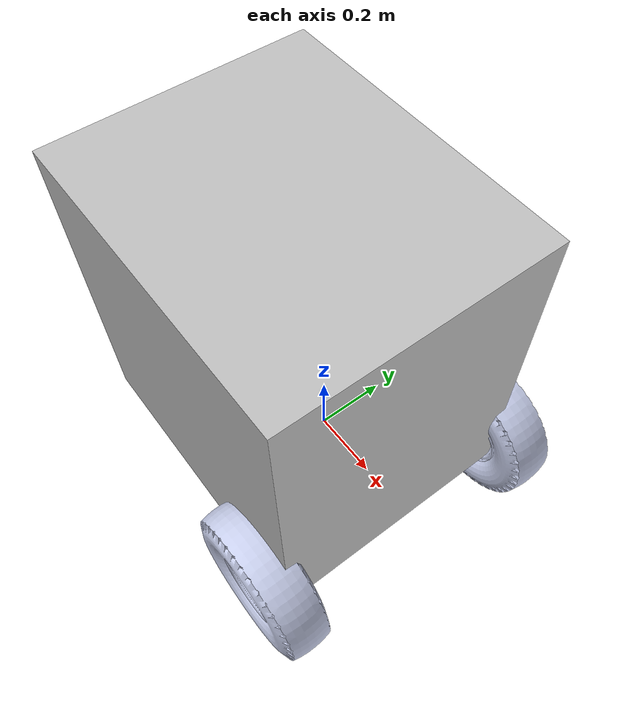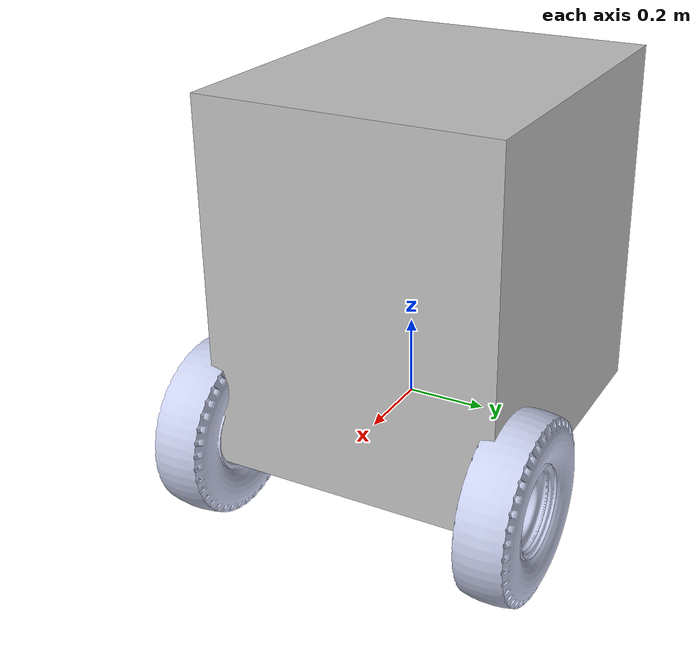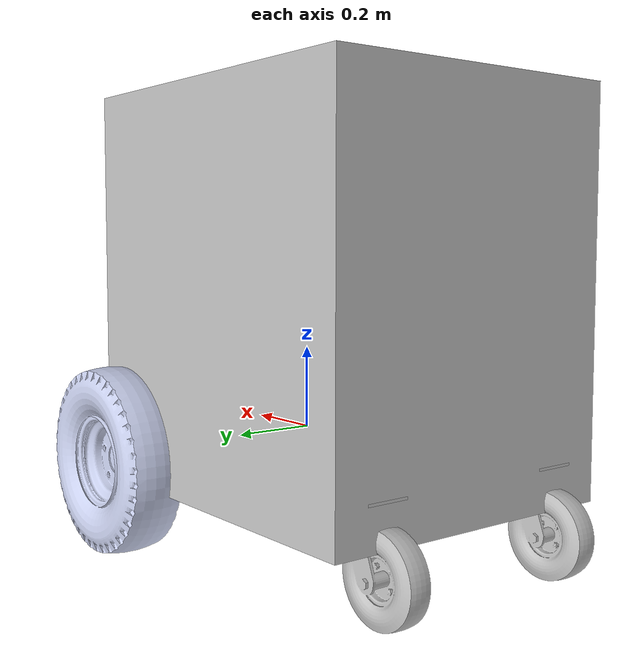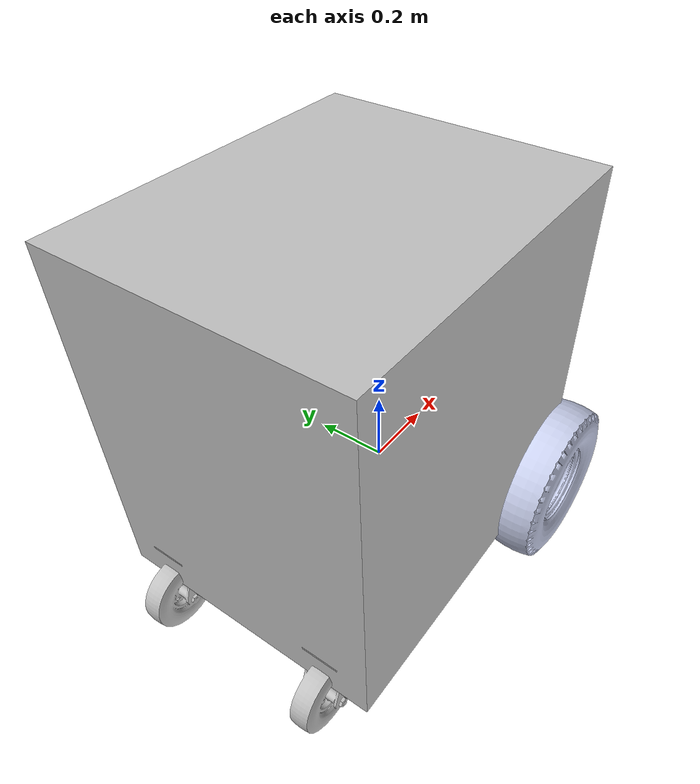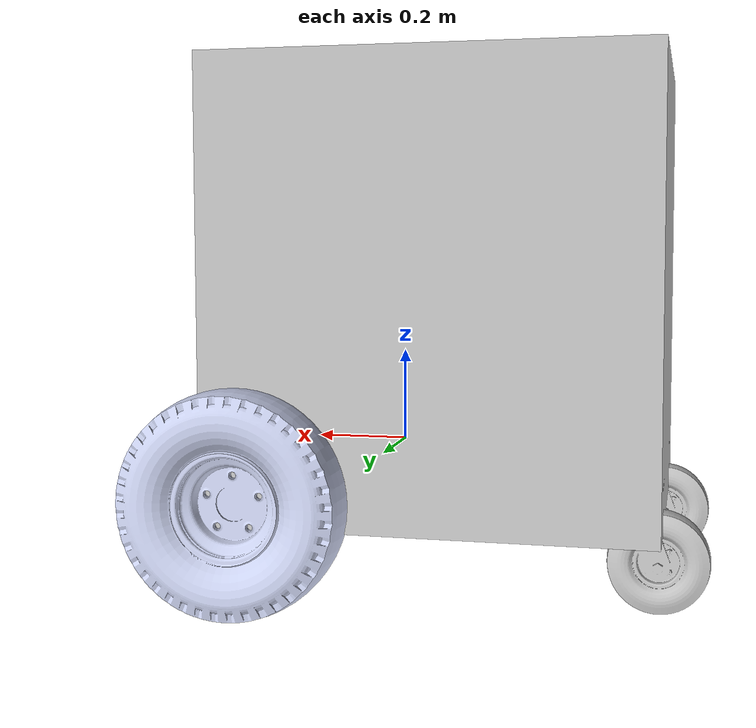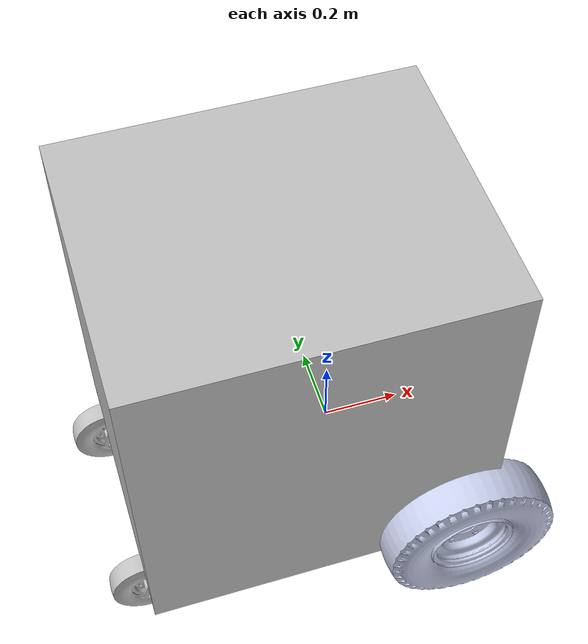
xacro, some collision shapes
<?xml version='1.0' encoding='utf-8'?>
<robot name="r3_a" xmlns:xacro="http://www.ros.org/wiki/xacro">
  <!--Canonical normalized export. Collision boxes are provisional outer bounds, not validated wheel/contact geometry. No sensor mounts or base_footprint added.-->
  <link name="base_link">
    <inertial>
      <origin xyz="0.037416177594850997 -0.0012743090117183201 0.047060864214616999" rpy="0 0 0" />
      <mass value="81.1401446778104" />
      <inertia ixx="0.728632085236677" ixy="1.32350753774596E-05" ixz="-0.022485961790775701" iyy="1.14289496966306" iyz="-7.48148338659214e-05" izz="1.53133782528754" />
    </inertial>
    <visual>
      <origin xyz="-0 -0 0" rpy="0 0 3.1415926535897931" />
      <geometry>
        <mesh filename="package://igvc_description/meshes/camera_mount/base_static_source_basis.stl" />
      </geometry>
      <material name="">
        <color rgba="0.752941176470588 0.752941176470588 0.752941176470588 1" />
      </material>
    </visual>
    <collision name="provisional_bounds_0">
      <origin xyz="-0.12021836638450623 -0 0.34425326436758041" rpy="0 0 0" />
      <geometry>
        <box size="0.91920000314712524 0.7556459903717041 0.95149345695972443" />
      </geometry>
    </collision>
  </link>
  <link name="wheel_left">
    <inertial>
      <origin xyz="1.7979609136242699e-05 -0.0035769797595725 -1.79796950559377e-05" rpy="0 0 0" />
      <mass value="6.00743296352879" />
      <inertia ixx="0.113142005853355" ixy="-3.62584231888751E-08" ixz="8.1856476746248695e-07" iyy="0.205661598440745" iyz="3.6267072903960198e-08" izz="0.113144233755394" />
    </inertial>
    <visual>
      <origin xyz="-0 -0 0" rpy="0 0 3.1415926535897931" />
      <geometry>
        <mesh filename="package://igvc_description/meshes/visual/wheel_right.stl" />
      </geometry>
      <material name="">
        <color rgba="0.792156862745098 0.819607843137255 0.933333333333333 1" />
      </material>
    </visual>
    <collision name="provisional_bounds_0">
      <origin xyz="-0 -0.0019050240516662598 0" rpy="0 0 0" />
      <geometry>
        <box size="0.45904400944709778 0.14729635417461395 0.458810955286026" />
      </geometry>
    </collision>
  </link>
  <joint name="leftWheel" type="continuous">
    <origin xyz="0.25591000000000003 0.40526000000000001 -0.074450000000000002" rpy="0 0 0" />
    <parent link="base_link" />
    <child link="wheel_left" />
    <axis xyz="-0 1 0" />
    <limit effort="10" velocity="10" />
    <dynamics damping="0.5" friction="0.5" />
  </joint>
  <link name="wheel_right">
    <inertial>
      <origin xyz="-1.7979609126361799e-05 0.0035769797595726102 -1.7979695055792e-05" rpy="0 0 0" />
      <mass value="6.00743296352881" />
      <inertia ixx="0.113142005853356" ixy="-3.62584231895956E-08" ixz="-8.1856476739378803e-07" iyy="0.205661598440746" iyz="-3.6267072944762298e-08" izz="0.113144233755395" />
    </inertial>
    <visual>
      <origin xyz="-0 -0 0" rpy="0 0 3.1415926535897931" />
      <geometry>
        <mesh filename="package://igvc_description/meshes/visual/wheel_left.stl" />
      </geometry>
      <material name="">
        <color rgba="0.792156862745098 0.819607843137255 0.933333333333333 1" />
      </material>
    </visual>
    <collision name="provisional_bounds_0">
      <origin xyz="-0 0.0019050240516662598 0" rpy="0 0 0" />
      <geometry>
        <box size="0.45904400944709778 0.14729635417461395 0.458810955286026" />
      </geometry>
    </collision>
  </link>
  <joint name="rightWheel" type="continuous">
    <origin xyz="0.25591000000000003 -0.40525 -0.074450000000000002" rpy="0 0 0" />
    <parent link="base_link" />
    <child link="wheel_right" />
    <axis xyz="-0 -1 0" />
    <limit effort="10" velocity="10" />
    <dynamics damping="0.5" friction="0.5" />
  </joint>
  <link name="left_caster">
    <inertial>
      <origin xyz="-0.039652255620055601 -5.81009720836689e-05 -0.13418182511891799" rpy="0 0 0" />
      <mass value="1.85010410933945" />
      <inertia ixx="0.00574331776783894" ixy="2.86835844426741E-08" ixz="-0.000128265973193796" iyy="0.00961425292360563" iyz="8.6762142845401104e-08" izz="0.00547082250538176" />
    </inertial>
    <visual>
      <origin xyz="-0 -0 0" rpy="0 0 3.1415926535897931" />
      <geometry>
        <mesh filename="package://igvc_description/meshes/visual/right_caster.stl" />
      </geometry>
      <material name="">
        <color rgba="0.752941176470588 0.752941176470588 0.752941176470588 1" />
      </material>
    </visual>
    <collision name="provisional_bounds_0">
      <origin xyz="-0.044450003653764725 -0.0013969987630844116 -0.12215155526064336" rpy="0 0 0" />
      <geometry>
        <box size="0.20320000499486923 0.12065000087022781 0.25700312526896596" />
      </geometry>
    </collision>
  </link>
  <joint name="leftCaster" type="continuous">
    <origin xyz="-0.52775000000000005 0.24612000000000001 -0.03635" rpy="0 0 0" />
    <parent link="base_link" />
    <child link="left_caster" />
    <axis xyz="-0 -0 1" />
    <limit effort="10" velocity="10" />
    <dynamics damping="0.1" friction="0.1" />
  </joint>
  <link name="right_caster">
    <inertial>
      <origin xyz="-0.039652255620043299 -5.8100972084779197e-05 -0.13418182511888299" rpy="0 0 0" />
      <mass value="1.85010410933997" />
      <inertia ixx="0.00574331776784025" ixy="2.86835844965072E-08" ixz="-0.00012826597319479501" iyy="0.00961425292360711" iyz="8.6762142935348604e-08" izz="0.00547082250538194" />
    </inertial>
    <visual>
      <origin xyz="-0 -0 0" rpy="0 0 3.1415926535897931" />
      <geometry>
        <mesh filename="package://igvc_description/meshes/visual/left_caster.stl" />
      </geometry>
      <material name="">
        <color rgba="0.752941176470588 0.752941176470588 0.752941176470588 1" />
      </material>
    </visual>
    <collision name="provisional_bounds_0">
      <origin xyz="-0.044450003653764725 -0.0013969987630844116 -0.12215155526064336" rpy="0 0 0" />
      <geometry>
        <box size="0.20320000499486923 0.12065000087022781 0.25700312526896596" />
      </geometry>
    </collision>
  </link>
  <joint name="rightCaster" type="continuous">
    <origin xyz="-0.52775000000000005 -0.24612000000000001 -0.03635" rpy="0 0 0" />
    <parent link="base_link" />
    <child link="right_caster" />
    <axis xyz="-0 -0 1" />
    <limit effort="10" velocity="10" />
    <dynamics damping="0.1" friction="0.1" />
  </joint>
  <link name="lidar_link">
    <visual>
      <origin xyz="0 0 -0.044600000000000001" rpy="0 0 0" />
      <geometry>
        <mesh filename="package://igvc_description/meshes/lidar/rplidar_a1.stl" />
      </geometry>
      <material name="lidar_dark">
        <color rgba="0.055 0.065 0.07 1" />
      </material>
    </visual>
  </link>
  <joint name="lidar_mount" type="fixed">
    <parent link="base_link" />
    <child link="lidar_link" />
    <origin xyz="0.27002280000000001 0 0.33960000000000001" rpy="0 0 0" />
  </joint>
  <link name="camera_mount_link">
    <visual>
      <geometry>
        <mesh filename="package://igvc_description/meshes/camera_mount/moving_bracket_pivot_level.stl" />
      </geometry>
    </visual>
  </link>
  <joint name="camera_pitch_joint" type="revolute">
    <parent link="base_link" />
    <child link="camera_mount_link" />
    <origin xyz="-0.34396835999999997 0 0.80000000000000004" rpy="0 0 0" />
    <axis xyz="0 1 0" />
    <limit lower="-0.5235987755982988" upper="0.5235987755982988" velocity="1" effort="1" />
  </joint>
  <link name="camera_link">
    <visual>
      <geometry>
        <mesh filename="package://igvc_description/meshes/camera/oak_d_pro.stl" />
      </geometry>
      <material name="camera_dark">
        <color rgba="0.05 0.05 0.05 1" />
      </material>
    </visual>
    <visual name="lens_rings">
      <geometry>
        <mesh filename="package://igvc_description/meshes/camera/oak_d_pro_lens_rings.stl" />
      </geometry>
      <material name="lens_rings">
        <color rgba="0.3 0.35 0.4 1" />
      </material>
    </visual>
    <visual name="lens_glass">
      <geometry>
        <mesh filename="package://igvc_description/meshes/camera/oak_d_pro_lens_glass.stl" />
      </geometry>
      <material name="lens_glass">
        <color rgba="0.03 0.08 0.14 1" />
      </material>
    </visual>
  </link>
  <joint name="camera_body_fixed" type="fixed">
    <parent link="camera_mount_link" />
    <child link="camera_link" />
    <origin xyz="0.062900429999999993 0 0.0044780200000000001" rpy="0 0 0" />
  </joint>
  <link name="camera_color_optical_frame" />
  <joint name="camera_optical_fixed" type="fixed">
    <parent link="camera_link" />
    <child link="camera_color_optical_frame" />
    <origin xyz="0.01155045 0 0.0047637799999999996" rpy="-1.5707963267948966 0 -1.5707963267948966" />
  </joint>
</robot>
